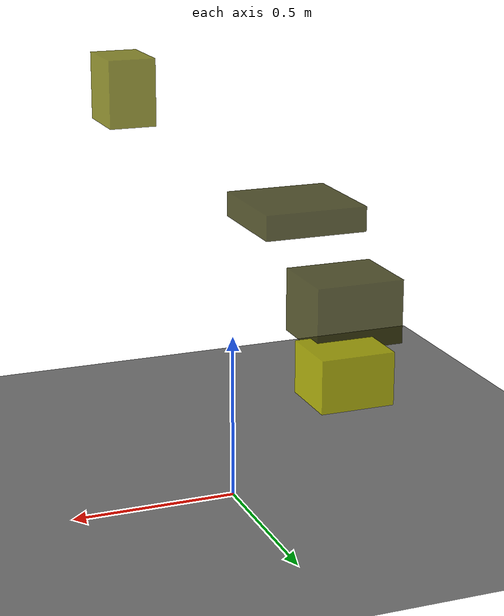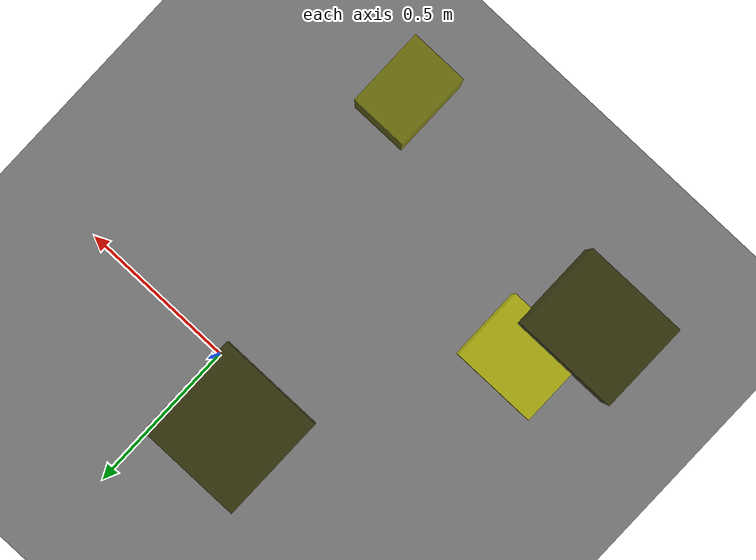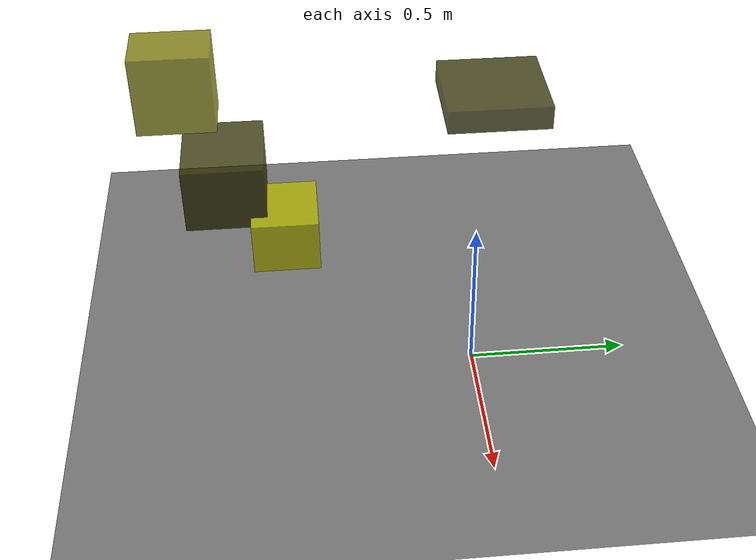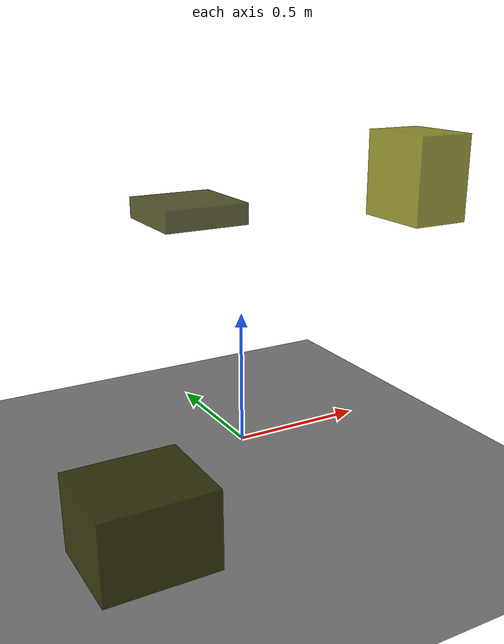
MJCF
<?xml version="1.0"?>
<mujoco model="obstacle_scene">
  <compiler angle="radian" coordinate="local"/>
  <option timestep="0.001" gravity="0 0 -9.81"/>

  <asset>
    <material name="obstacle_mat" rgba="0.8 0.8 0.0 0.8"/>
    <material name="ground_mat" rgba="0.5 0.5 0.5 1"/>
  </asset>

  <worldbody>
    <!-- Ground plane -->
    <geom name="ground" type="plane" size="3 3 0.1" material="ground_mat"/>

    <!-- Obstacles -->
    <body name="obstacle_0" pos="-0.168995 0.061150 0.880265">
      <geom name="obs_0" type="box" size="0.151527 0.153216 0.036451" rgba="0.2 0.2 0.0 0.8"/>
    </body>
    <body name="obstacle_1" pos="0.066156 -0.839702 1.100915">
      <geom name="obs_1" type="box" size="0.077943 0.105878 0.110684" rgba="0.5 0.5 0.0 0.8"/>
    </body>
    <body name="obstacle_2" pos="-0.633989 -0.588042 0.107184">
      <geom name="obs_2" type="box" size="0.134570 0.117885 0.095822" rgba="0.8 0.8 0.0 0.8"/>
    </body>
    <body name="obstacle_3" pos="-0.721939 -0.789499 0.281592">
      <geom name="obs_3" type="box" size="0.163272 0.141980 0.117118" rgba="0.2 0.2 0.0 0.8"/>
    </body>
  </worldbody>
</mujoco>
